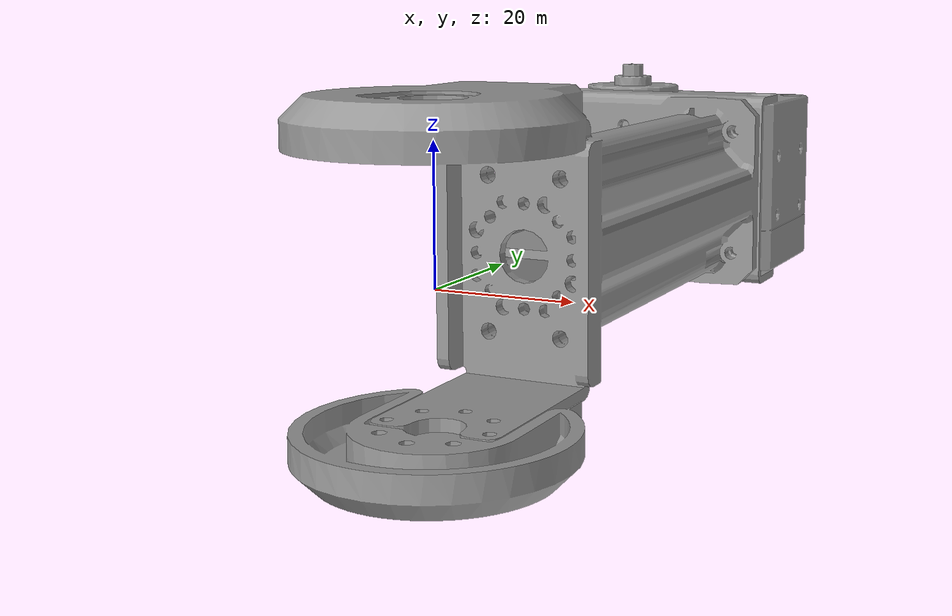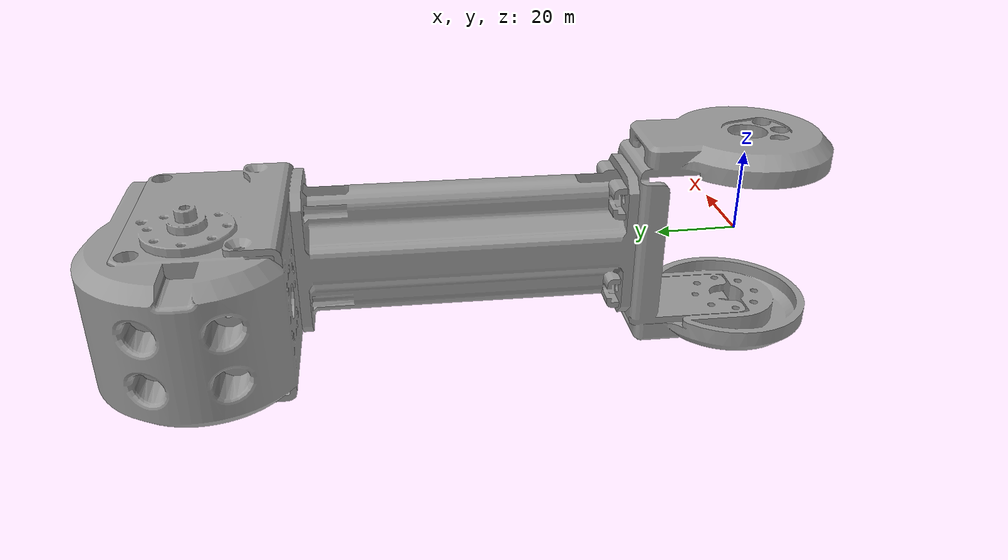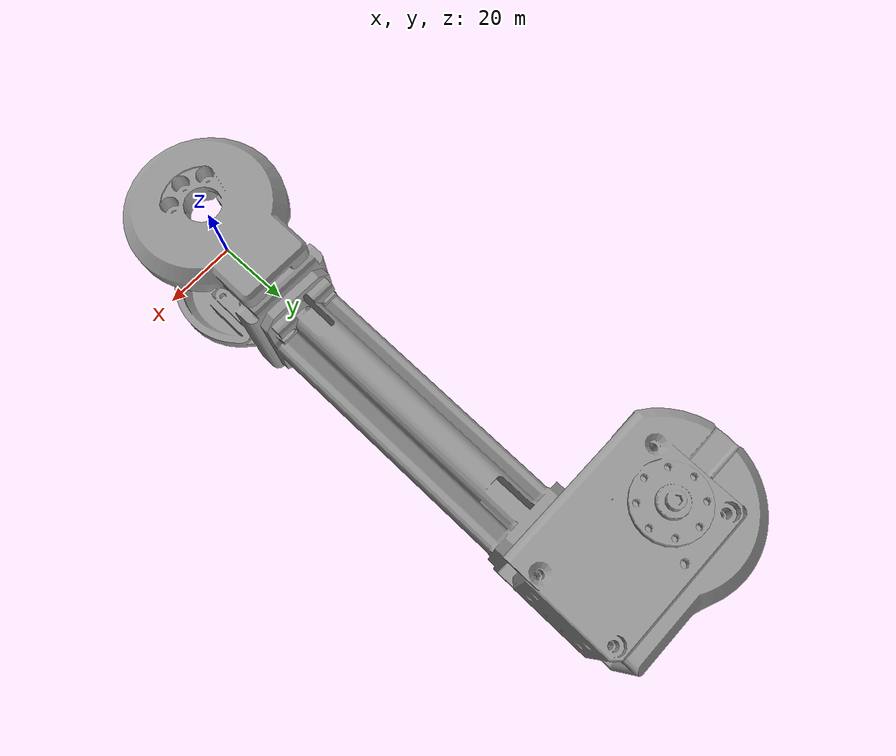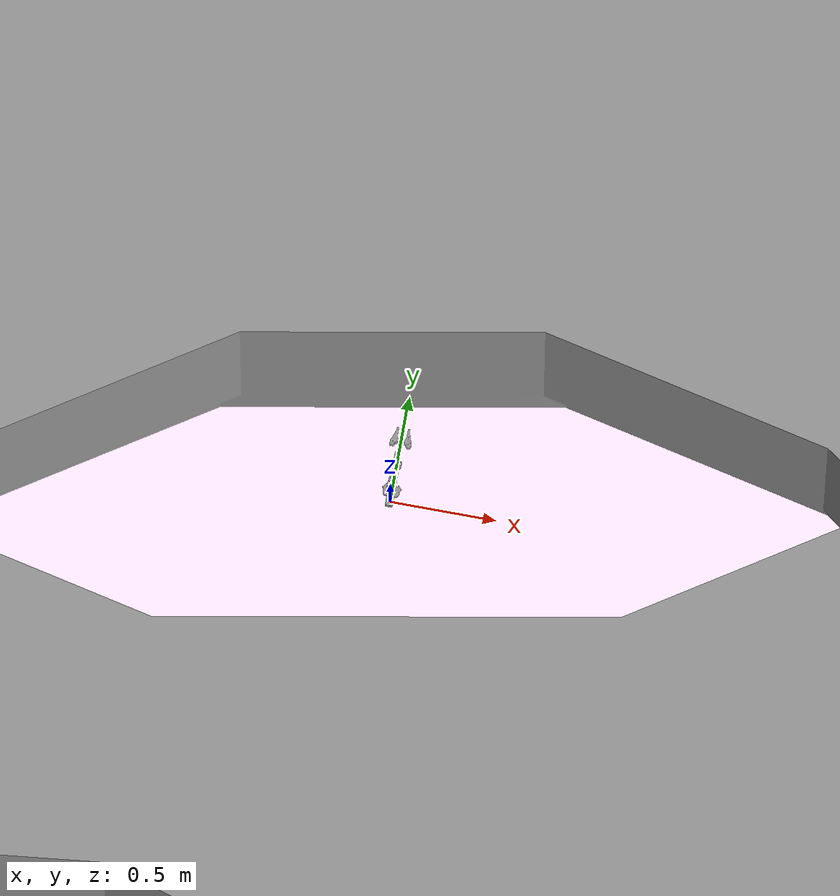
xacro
<?xml version="1.0"?>
<!-- Open_Manipulator Chain -->
<robot name="open_manipulator" xmlns:xacro="http://ros.org/wiki/xacro">

  <!-- Import all Gazebo-customization elements, including Gazebo colors -->
  <xacro:include filename="$(find open_manipulator_description)/urdf/open_manipulator.gazebo.xacro" />
  <!-- Import Rviz colors -->
  <xacro:include filename="$(find open_manipulator_description)/urdf/materials.xacro" />

  <!-- World -->
  <link name="world">
  </link>

  <!-- World fixed joint-->
  <joint name="world_fixed" type="fixed">
    <origin xyz="0 0 -0.02" rpy="0 0 0"/>
    <parent link="world"/>
    <child link="link1"/>
  </joint>

  <!-- Link 1 -->
  <link name="link1">
    <visual>
      <origin xyz="0 0 0" rpy="0 0 0"/>
      <geometry>
        <mesh filename="package://open_manipulator_description/meshes/chain_link1.stl"/>
      </geometry>
      <material name="grey"/>
    </visual>

    <collision>
      <origin xyz="0 0 0" rpy="0 0 0"/>
      <geometry>
        <mesh filename="package://open_manipulator_description/meshes/chain_link1.stl"/>
      </geometry>
    </collision>

    <inertial>
      <origin xyz="0 0 0" />
      <mass value="0.0569747049170675" />
      <inertia ixx="0.1" ixy="0.0" ixz="0.0"
               iyy="0.1" iyz="0.0"
               izz="0.1" />
    </inertial>

  </link>

  <!-- Joint 1 -->
  <joint name="joint1" type="revolute">
    <parent link="link1"/>
    <child link="link2"/>
    <origin xyz="-0.0034687 0.01296 0.0613" rpy="1.5708 3.4689E-15 1.5533"/>
    <axis xyz="0 1 0"/>
    <limit velocity="6.5" effort="1000" lower="${-pi*0.9}" upper="${pi*0.9}" />
  </joint>

  <!-- Transmission 1 -->
  <transmission name="tran1">
    <type>transmission_interface/SimpleTransmission</type>
    <joint name="joint1">
      <hardwareInterface>hardware_interface/EffortJointInterface</hardwareInterface>
    </joint>
    <actuator name="motor1">
      <hardwareInterface>hardware_interface/EffortJointInterface</hardwareInterface>
      <mechanicalReduction>1</mechanicalReduction>
    </actuator>
  </transmission>

  <!--  Link 2 -->
  <link name="link2">
    <visual>
      <origin xyz="0 0 0" rpy="0 0 0"/>
      <geometry>
        <mesh filename="package://open_manipulator_description/meshes/chain_link2.stl"/>
      </geometry>
      <material name="grey"/>
    </visual>

    <collision>
      <origin xyz="0 0 0" rpy="0 0 0"/>
      <geometry>
        <mesh filename="package://open_manipulator_description/meshes/chain_link2.stl"/>
      </geometry>
    </collision>

    <inertial>
      <origin xyz="0 0 0" />
      <mass value="0.0461133989340609" />
      <inertia ixx="0.1" ixy="0.0" ixz="0.0"
               iyy="0.1" iyz="0.0"
               izz="0.1" />
    </inertial>

  </link>

  <!--  Joint 2 -->
  <joint name="joint2" type="revolute">
    <parent link="link2"/>
    <child link="link3"/>
    <origin xyz="0 0.0405 0" rpy="-1.6188 1.5708 -1.6188"/>
    <axis xyz="-1 0 0"/>
    <limit velocity="6.5" effort="1000" lower="${-pi*0.5}" upper="${pi*0.5}" />
  </joint>

  <!-- Transmission 2 -->
  <transmission name="tran2">
    <type>transmission_interface/SimpleTransmission</type>
    <joint name="joint2">
      <hardwareInterface>hardware_interface/EffortJointInterface</hardwareInterface>
    </joint>
    <actuator name="motor2">
      <hardwareInterface>hardware_interface/EffortJointInterface</hardwareInterface>
      <mechanicalReduction>1</mechanicalReduction>
    </actuator>
  </transmission>

  <!--  Link 3 -->
  <link name="link3">
    <visual>
      <origin xyz="0 0 0" rpy="0 0 0"/>
      <geometry>
        <mesh filename="package://open_manipulator_description/meshes/chain_link3.stl"/>
      </geometry>
      <material name="grey"/>
    </visual>

    <collision>
      <origin xyz="0 0 0" rpy="0 0 0"/>
      <geometry>
        <mesh filename="package://open_manipulator_description/meshes/chain_link3.stl"/>
      </geometry>
    </collision>

    <inertial>
      <origin xyz="0 0 0" />
      <mass value="0.0829479731761999" />
      <inertia ixx="0.1" ixy="0.0" ixz="0.0"
               iyy="0.1" iyz="0.0"
               izz="0.1" />
    </inertial>

  </link>

  <!--  Joint 3 -->
  <joint name="joint3" type="revolute">
    <parent link="link3"/>
    <child link="link4"/>
    <origin xyz="0 0.1175 0.024" rpy="1.5708 -6.9389E-18 -1.5799E-15"/>
    <axis xyz="-1 0 0"/>
    <limit velocity="6.5" effort="1000" lower="${-pi*0.3}" upper="${pi*0.44}" />
  </joint>

  <!-- Transmission 3 -->
  <transmission name="tran3">
    <type>transmission_interface/SimpleTransmission</type>
    <joint name="joint3">
      <hardwareInterface>hardware_interface/EffortJointInterface</hardwareInterface>
    </joint>
    <actuator name="motor3">
      <hardwareInterface>hardware_interface/EffortJointInterface</hardwareInterface>
      <mechanicalReduction>1</mechanicalReduction>
    </actuator>
  </transmission>

  <!--  Link 4 -->
  <link name="link4">
    <visual>
      <origin xyz="0 0 0" rpy="0 0 0"/>
      <geometry>
        <mesh filename="package://open_manipulator_description/meshes/chain_link4.stl"/>
      </geometry>
      <material name="grey"/>
    </visual>

    <collision>
      <origin xyz="0 0 0" rpy="0 0 0"/>
      <geometry>
        <mesh filename="package://open_manipulator_description/meshes/chain_link4.stl"/>
      </geometry>
    </collision>

    <inertial>
      <origin xyz="0 0 0" />
      <mass value="0.0654339384754518" />
      <inertia ixx="0.1" ixy="0.0" ixz="0.0"
               iyy="0.1" iyz="0.0"
               izz="0.1" />
    </inertial>

  </link>

  <!--  Joint 4 -->
  <joint name="joint4" type="revolute">
    <parent link="link4"/>
    <child link="link5"/>
    <origin xyz="0 0.0985 0" rpy="-3.1416 -3.0531E-14 3.1416"/>
    <axis xyz="1 0 0"/>
    <limit velocity="6.5" effort="1000" lower="${-pi*0.4}" upper="${pi*0.5}" />
  </joint>

  <!-- Transmission 4 -->
  <transmission name="tran4">
    <type>transmission_interface/SimpleTransmission</type>
    <joint name="joint4">
      <hardwareInterface>hardware_interface/EffortJointInterface</hardwareInterface>
    </joint>
    <actuator name="motor4">
      <hardwareInterface>hardware_interface/EffortJointInterface</hardwareInterface>
      <mechanicalReduction>1</mechanicalReduction>
    </actuator>
  </transmission>

  <!--  Link 5 -->
  <link name="link5">
    <visual>
      <origin xyz="0 0 0" rpy="0 0 0"/>
      <geometry>
        <mesh filename="package://open_manipulator_description/meshes/chain_link5.stl"/>
      </geometry>
      <material name="grey"/>
    </visual>

    <collision>
      <origin xyz="0 0 0" rpy="0 0 0"/>
      <geometry>
        <mesh filename="package://open_manipulator_description/meshes/chain_link5.stl"/>
      </geometry>
    </collision>

    <inertial>
      <origin xyz="0 0 0" />
      <mass value="0.0803135093705728" />
      <inertia ixx="0.1" ixy="0.0" ixz="0.0"
               iyy="0.1" iyz="0.0"
               izz="0.1" />
    </inertial>

  </link>

  <!--  Grip link -->
  <link name="grip_link">
    <visual>
      <origin xyz="0.028 0.0246 0" rpy="0 0 0"/>
      <geometry>
        <mesh filename="package://open_manipulator_description/meshes/chain_link_grip_l.stl" scale="0.001 0.001 0.001"/>
      </geometry>
      <material name="grey"/>
    </visual>

    <collision>
      <origin xyz="0.028 0.0246 0" rpy="0 0 0"/>
      <geometry>
        <mesh filename="package://open_manipulator_description/meshes/chain_link_grip_l.stl" scale="0.001 0.001 0.001"/>
      </geometry>
    </collision>

    <inertial>
      <origin xyz="0 0 0" />
      <mass value="0.017" />
      <inertia ixx="0.1" ixy="0.0" ixz="0.0"
               iyy="0.1" iyz="0.0"
               izz="0.1" />
    </inertial>

  </link>

  <!--  Grip joint -->
  <joint name="grip_joint" type="prismatic">
    <parent link="link5"/>
    <child link="grip_link"/>
    <origin xyz="0.0 0.09 0.0" rpy="0 0 1.57"/>
    <axis xyz="0 -1 0"/>
    <limit velocity="3.5" effort="100" lower="-0.015" upper="0.0105" />
  </joint>

  <!-- Transmission 5 -->
  <transmission name="tran5">
    <type>transmission_interface/SimpleTransmission</type>
    <joint name="grip_joint">
      <hardwareInterface>hardware_interface/EffortJointInterface</hardwareInterface>
    </joint>
    <actuator name="motor7">
      <hardwareInterface>hardware_interface/EffortJointInterface</hardwareInterface>
      <mechanicalReduction>1</mechanicalReduction>
    </actuator>
  </transmission>

  <!--  Grip link sub -->
  <link name="grip_link_sub">
    <visual>
      <origin xyz="0.028 -0.0246 0" rpy="0 0 0"/>
      <geometry>
        <mesh filename="package://open_manipulator_description/meshes/chain_link_grip_r.stl" scale="0.001 0.001 0.001"/>
      </geometry>
      <material name="grey"/>
    </visual>

    <collision>
      <origin xyz="0.028 -0.0246 0" rpy="0 0 0"/>
      <geometry>
        <mesh filename="package://open_manipulator_description/meshes/chain_link_grip_r.stl" scale="0.001 0.001 0.001"/>
      </geometry>
    </collision>

    <inertial>
      <origin xyz="0 0 0" />
      <mass value="0.017" />
      <inertia ixx="0.1" ixy="0.0" ixz="0.0"
               iyy="0.1" iyz="0.0"
               izz="0.1" />
    </inertial>

  </link>

  <!--  Grip joint sub -->
  <joint name="grip_joint_sub" type="prismatic">
    <parent link="link5"/>
    <child link="grip_link_sub"/>
    <origin xyz="0.0 0.09 0.0" rpy="0 0 1.57"/>
    <axis xyz="0 1 0"/>
    <limit velocity="3.5" effort="100" lower="-0.015" upper="0.0105" />
  </joint>

  <!-- Transmission 6 -->
  <transmission name="tran6">
    <type>transmission_interface/SimpleTransmission</type>
    <joint name="grip_joint_sub">
      <hardwareInterface>hardware_interface/EffortJointInterface</hardwareInterface>
    </joint>
    <actuator name="motor8">
      <hardwareInterface>hardware_interface/EffortJointInterface</hardwareInterface>
      <mechanicalReduction>1</mechanicalReduction>
    </actuator>
  </transmission>

</robot>
